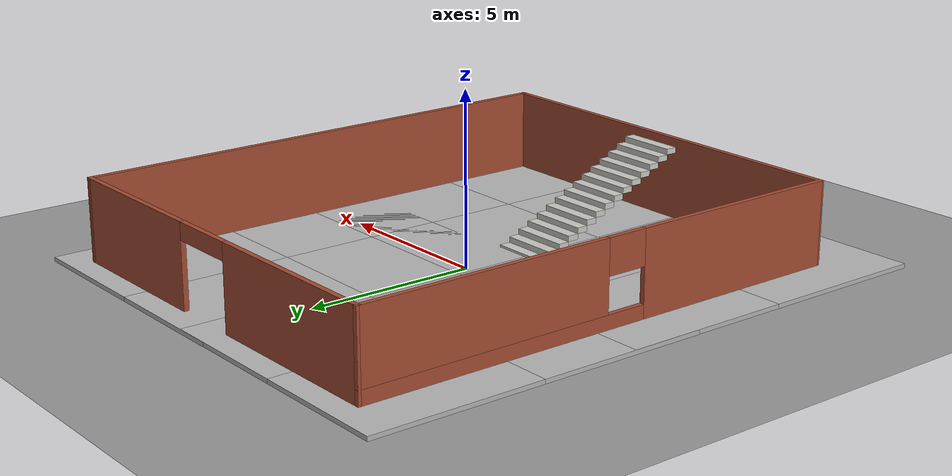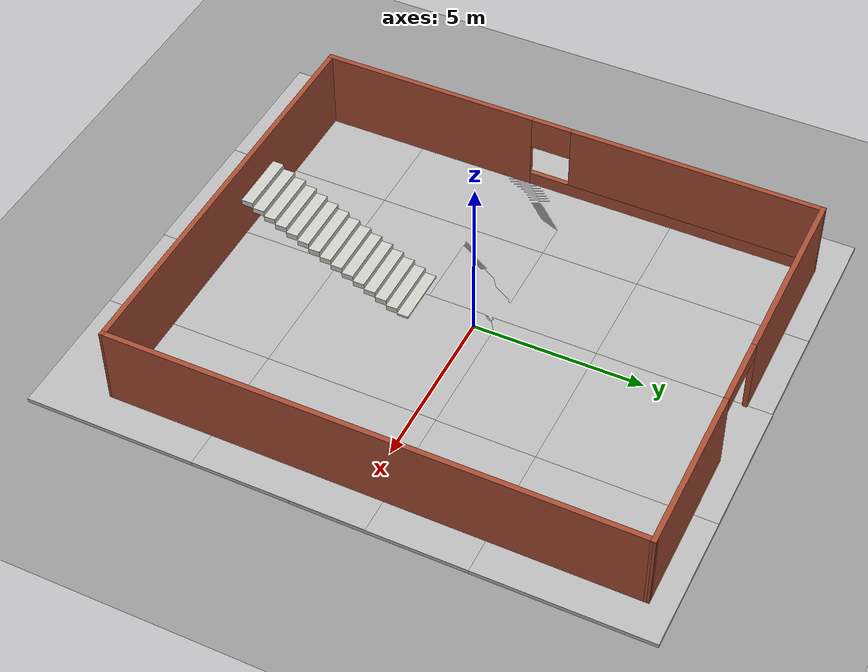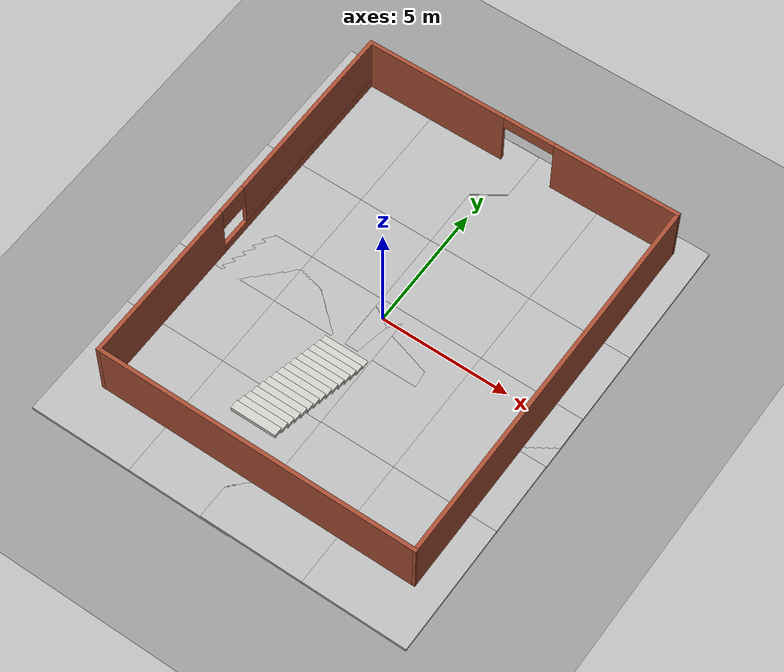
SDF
<sdf version="1.6">
 <world name="default">
  <light name="sun" type="directional">
   <pose>0 0 10 0 -0 0</pose>
   <diffuse>0.8 0.8 0.8 1</diffuse>
   <specular>0.2 0.2 0.2 1</specular>
   <attenuation>
    <range>1000</range>
    <constant>0.9</constant>
    <linear>0.01</linear>
    <quadratic>0.001</quadratic>
   </attenuation>
   <direction>0.5 0.1 -0.9</direction>
  </light>
  <scene><ambient>0.4 0.4 0.4 1</ambient><background>0.7 0.7 0.7 1</background><shadows>1</shadows></scene>
  <physics name="default_physics" default="0" type="ode">
   <max_step_size>0.01</max_step_size>
   <real_time_factor>1</real_time_factor>
   <real_time_update_rate>100</real_time_update_rate>
  </physics>
  <model name="ground_plane_0">
   <static>1</static>
   <link name="link">
    <collision name="collision">
     <geometry><plane><normal>0 0 1</normal><size>100 100</size></plane></geometry>
     <surface><friction><ode><mu>100</mu><mu2>50</mu2></ode></friction></surface>
    </collision>
    <visual name="visual">
     <cast_shadows>0</cast_shadows>
     <geometry><plane><normal>0 0 1</normal><size>100 100</size></plane></geometry>
     <material>
      <script><uri>file://media/materials/scripts/gazebo.material</uri><name>Gazebo/Grey</name></script>
     </material>
    </visual>
    <velocity_decay><linear>0</linear><angular>0</angular></velocity_decay>
   </link>
   <pose>0.497681 0 0 0 -0 0</pose>
  </model>
  <gravity>0 0 -9.8</gravity>
  <magnetic_field>6e-06 2.3e-05 -4.2e-05</magnetic_field>
  <atmosphere type="adiabatic"/>
  <spherical_coordinates>
   <surface_model>EARTH_WGS84</surface_model>
   <latitude_deg>0</latitude_deg>
   <longitude_deg>0</longitude_deg>
   <elevation>0</elevation>
   <heading_deg>0</heading_deg>
  </spherical_coordinates>
  <model name="botenv1">
   <pose>0.283531 0.148617 0 0 -0 0</pose>
   <link name="Stairs_2">
    <visual name="Stairs_2_Visual_0">
     <pose>-0.549734 -2.00833 0.083333 0 -0 0</pose>
     <geometry><box><size>1.75 0.334 0.166667</size></box></geometry>
     <material>
      <script><uri>file://media/materials/scripts/gazebo.material</uri><name>Gazebo/CeilingTiled</name></script>
      <ambient>0.760784 0.662745 0.627451 1</ambient>
     </material>
    </visual>
    <collision name="Stairs_2_Collision_0">
     <geometry><box><size>1.75 0.334 0.166667</size></box></geometry>
     <pose>-0.549734 -2.00833 0.083333 0 -0 0</pose>
    </collision>
    <visual name="Stairs_2_Visual_1">
     <pose>-0.549734 -2.34233 0.25 0 -0 0</pose>
     <geometry><box><size>1.75 0.334 0.166667</size></box></geometry>
     <material>
      <script><uri>file://media/materials/scripts/gazebo.material</uri><name>Gazebo/CeilingTiled</name></script>
      <ambient>0.760784 0.662745 0.627451 1</ambient>
     </material>
    </visual>
    <collision name="Stairs_2_Collision_1">
     <geometry><box><size>1.75 0.334 0.166667</size></box></geometry>
     <pose>-0.549734 -2.34233 0.25 0 -0 0</pose>
    </collision>
    <visual name="Stairs_2_Visual_2">
     <pose>-0.549734 -2.67633 0.416667 0 -0 0</pose>
     <geometry><box><size>1.75 0.334 0.166667</size></box></geometry>
     <material>
      <script><uri>file://media/materials/scripts/gazebo.material</uri><name>Gazebo/CeilingTiled</name></script>
      <ambient>0.760784 0.662745 0.627451 1</ambient>
     </material>
    </visual>
    <collision name="Stairs_2_Collision_2">
     <geometry><box><size>1.75 0.334 0.166667</size></box></geometry>
     <pose>-0.549734 -2.67633 0.416667 0 -0 0</pose>
    </collision>
    <visual name="Stairs_2_Visual_3">
     <pose>-0.549734 -3.01033 0.583333 0 -0 0</pose>
     <geometry><box><size>1.75 0.334 0.166667</size></box></geometry>
     <material>
      <script><uri>file://media/materials/scripts/gazebo.material</uri><name>Gazebo/CeilingTiled</name></script>
      <ambient>0.760784 0.662745 0.627451 1</ambient>
     </material>
    </visual>
    <collision name="Stairs_2_Collision_3">
     <geometry><box><size>1.75 0.334 0.166667</size></box></geometry>
     <pose>-0.549734 -3.01033 0.583333 0 -0 0</pose>
    </collision>
    <visual name="Stairs_2_Visual_4">
     <pose>-0.549734 -3.34433 0.75 0 -0 0</pose>
     <geometry><box><size>1.75 0.334 0.166667</size></box></geometry>
     <material>
      <script><uri>file://media/materials/scripts/gazebo.material</uri><name>Gazebo/CeilingTiled</name></script>
      <ambient>0.760784 0.662745 0.627451 1</ambient>
     </material>
    </visual>
    <collision name="Stairs_2_Collision_4">
     <geometry><box><size>1.75 0.334 0.166667</size></box></geometry>
     <pose>-0.549734 -3.34433 0.75 0 -0 0</pose>
    </collision>
    <visual name="Stairs_2_Visual_5">
     <pose>-0.549734 -3.67833 0.916667 0 -0 0</pose>
     <geometry><box><size>1.75 0.334 0.166667</size></box></geometry>
     <material>
      <script><uri>file://media/materials/scripts/gazebo.material</uri><name>Gazebo/CeilingTiled</name></script>
      <ambient>0.760784 0.662745 0.627451 1</ambient>
     </material>
    </visual>
    <collision name="Stairs_2_Collision_5">
     <geometry><box><size>1.75 0.334 0.166667</size></box></geometry>
     <pose>-0.549734 -3.67833 0.916667 0 -0 0</pose>
    </collision>
    <visual name="Stairs_2_Visual_6">
     <pose>-0.549734 -4.01233 1.08333 0 -0 0</pose>
     <geometry><box><size>1.75 0.334 0.166667</size></box></geometry>
     <material>
      <script><uri>file://media/materials/scripts/gazebo.material</uri><name>Gazebo/CeilingTiled</name></script>
      <ambient>0.760784 0.662745 0.627451 1</ambient>
     </material>
    </visual>
    <collision name="Stairs_2_Collision_6">
     <geometry><box><size>1.75 0.334 0.166667</size></box></geometry>
     <pose>-0.549734 -4.01233 1.08333 0 -0 0</pose>
    </collision>
    <visual name="Stairs_2_Visual_7">
     <pose>-0.549734 -4.34633 1.25 0 -0 0</pose>
     <geometry><box><size>1.75 0.334 0.166667</size></box></geometry>
     <material>
      <script><uri>file://media/materials/scripts/gazebo.material</uri><name>Gazebo/CeilingTiled</name></script>
      <ambient>0.760784 0.662745 0.627451 1</ambient>
     </material>
    </visual>
    <collision name="Stairs_2_Collision_7">
     <geometry><box><size>1.75 0.334 0.166667</size></box></geometry>
     <pose>-0.549734 -4.34633 1.25 0 -0 0</pose>
    </collision>
    <visual name="Stairs_2_Visual_8">
     <pose>-0.549734 -4.68033 1.41667 0 -0 0</pose>
     <geometry><box><size>1.75 0.334 0.166667</size></box></geometry>
     <material>
      <script><uri>file://media/materials/scripts/gazebo.material</uri><name>Gazebo/CeilingTiled</name></script>
      <ambient>0.760784 0.662745 0.627451 1</ambient>
     </material>
    </visual>
    <collision name="Stairs_2_Collision_8">
     <geometry><box><size>1.75 0.334 0.166667</size></box></geometry>
     <pose>-0.549734 -4.68033 1.41667 0 -0 0</pose>
    </collision>
    <visual name="Stairs_2_Visual_9">
     <pose>-0.549734 -5.01433 1.58333 0 -0 0</pose>
     <geometry><box><size>1.75 0.334 0.166667</size></box></geometry>
     <material>
      <script><uri>file://media/materials/scripts/gazebo.material</uri><name>Gazebo/CeilingTiled</name></script>
      <ambient>0.760784 0.662745 0.627451 1</ambient>
     </material>
    </visual>
    <collision name="Stairs_2_Collision_9">
     <geometry><box><size>1.75 0.334 0.166667</size></box></geometry>
     <pose>-0.549734 -5.01433 1.58333 0 -0 0</pose>
    </collision>
    <visual name="Stairs_2_Visual_10">
     <pose>-0.549734 -5.34833 1.75 0 -0 0</pose>
     <geometry><box><size>1.75 0.334 0.166667</size></box></geometry>
     <material>
      <script><uri>file://media/materials/scripts/gazebo.material</uri><name>Gazebo/CeilingTiled</name></script>
      <ambient>0.760784 0.662745 0.627451 1</ambient>
     </material>
    </visual>
    <collision name="Stairs_2_Collision_10">
     <geometry><box><size>1.75 0.334 0.166667</size></box></geometry>
     <pose>-0.549734 -5.34833 1.75 0 -0 0</pose>
    </collision>
    <visual name="Stairs_2_Visual_11">
     <pose>-0.549734 -5.68233 1.91667 0 -0 0</pose>
     <geometry><box><size>1.75 0.334 0.166667</size></box></geometry>
     <material>
      <script><uri>file://media/materials/scripts/gazebo.material</uri><name>Gazebo/CeilingTiled</name></script>
      <ambient>0.760784 0.662745 0.627451 1</ambient>
     </material>
    </visual>
    <collision name="Stairs_2_Collision_11">
     <geometry><box><size>1.75 0.334 0.166667</size></box></geometry>
     <pose>-0.549734 -5.68233 1.91667 0 -0 0</pose>
    </collision>
    <visual name="Stairs_2_Visual_12">
     <pose>-0.549734 -6.01633 2.08333 0 -0 0</pose>
     <geometry><box><size>1.75 0.334 0.166667</size></box></geometry>
     <material>
      <script><uri>file://media/materials/scripts/gazebo.material</uri><name>Gazebo/CeilingTiled</name></script>
      <ambient>0.760784 0.662745 0.627451 1</ambient>
     </material>
    </visual>
    <collision name="Stairs_2_Collision_12">
     <geometry><box><size>1.75 0.334 0.166667</size></box></geometry>
     <pose>-0.549734 -6.01633 2.08333 0 -0 0</pose>
    </collision>
    <visual name="Stairs_2_Visual_13">
     <pose>-0.549734 -6.35033 2.25 0 -0 0</pose>
     <geometry><box><size>1.75 0.334 0.166667</size></box></geometry>
     <material>
      <script><uri>file://media/materials/scripts/gazebo.material</uri><name>Gazebo/CeilingTiled</name></script>
      <ambient>0.760784 0.662745 0.627451 1</ambient>
     </material>
    </visual>
    <collision name="Stairs_2_Collision_13">
     <geometry><box><size>1.75 0.334 0.166667</size></box></geometry>
     <pose>-0.549734 -6.35033 2.25 0 -0 0</pose>
    </collision>
    <visual name="Stairs_2_Visual_14">
     <pose>-0.549734 -6.68433 2.41667 0 -0 0</pose>
     <geometry><box><size>1.75 0.334 0.166667</size></box></geometry>
     <material>
      <script><uri>file://media/materials/scripts/gazebo.material</uri><name>Gazebo/CeilingTiled</name></script>
      <ambient>0.760784 0.662745 0.627451 1</ambient>
     </material>
    </visual>
    <collision name="Stairs_2_Collision_14">
     <geometry><box><size>1.75 0.334 0.166667</size></box></geometry>
     <pose>-0.549734 -6.68433 2.41667 0 -0 0</pose>
    </collision>
   </link>
   <link name="Wall_11">
    <pose>0 7.53397 0 0 0 -3.13611</pose>
    <visual name="Wall_11_Visual_0">
     <pose>-3.80989 0 1.25 0 -0 0</pose>
     <geometry><box><size>4.9244 0.15 2.5</size></box></geometry>
     <material>
      <script><uri>file://media/materials/scripts/gazebo.material</uri><name>Gazebo/Bricks</name></script>
      <ambient>1 1 1 1</ambient>
     </material>
    </visual>
    <collision name="Wall_11_Collision_0">
     <geometry><box><size>4.9244 0.15 2.5</size></box></geometry>
     <pose>-3.80989 0 1.25 0 -0 0</pose>
    </collision>
    <visual name="Wall_11_Visual_1">
     <pose>3.47078 0 1.25 0 -0 0</pose>
     <geometry><box><size>5.60263 0.15 2.5</size></box></geometry>
     <material>
      <script><uri>file://media/materials/scripts/gazebo.material</uri><name>Gazebo/Bricks</name></script>
      <ambient>1 1 1 1</ambient>
     </material>
    </visual>
    <collision name="Wall_11_Collision_1">
     <geometry><box><size>5.60263 0.15 2.5</size></box></geometry>
     <pose>3.47078 0 1.25 0 -0 0</pose>
    </collision>
    <visual name="Wall_11_Visual_2">
     <pose>-0.339116 0 2.25 0 -0 0</pose>
     <geometry><box><size>2.01715 0.15 0.5</size></box></geometry>
     <material>
      <script><uri>file://media/materials/scripts/gazebo.material</uri><name>Gazebo/Bricks</name></script>
      <ambient>1 1 1 1</ambient>
     </material>
    </visual>
    <collision name="Wall_11_Collision_2">
     <geometry><box><size>2.01715 0.15 0.5</size></box></geometry>
     <pose>-0.339116 0 2.25 0 -0 0</pose>
    </collision>
   </link>
   <link name="Wall_15">
    <collision name="Wall_15_Collision">
     <geometry><box><size>15.2861 0.15 2.5</size></box></geometry>
     <pose>0 0 1.25 0 -0 0</pose>
    </collision>
    <visual name="Wall_15_Visual">
     <pose>0 0 1.25 0 -0 0</pose>
     <geometry><box><size>15.2861 0.15 2.5</size></box></geometry>
     <material>
      <script><uri>file://media/materials/scripts/gazebo.material</uri><name>Gazebo/Bricks</name></script>
      <ambient>1 1 1 1</ambient>
     </material>
    </visual>
    <pose>6.189 -3.1e-05 0 0 -0 1.56974</pose>
   </link>
   <link name="Wall_5">
    <collision name="Wall_5_Collision">
     <geometry><box><size>12.5 0.15 2.5</size></box></geometry>
     <pose>0 0 1.25 0 -0 0</pose>
    </collision>
    <visual name="Wall_5_Visual">
     <pose>0 0 1.25 0 -0 0</pose>
     <geometry><box><size>12.5 0.15 2.5</size></box></geometry>
     <material>
      <script><uri>file://media/materials/scripts/gazebo.material</uri><name>Gazebo/Bricks</name></script>
      <ambient>1 1 1 1</ambient>
     </material>
    </visual>
    <pose>0.006 -7.56803 0 0 -0 0</pose>
   </link>
   <link name="Wall_8">
    <pose>-6.183 -0.034031 0 0 -0 1.57265</pose>
    <visual name="Wall_8_Visual_0">
     <pose>-4.338 0 1.25 0 -0 0</pose>
     <geometry><box><size>6.54244 0.15 2.5</size></box></geometry>
     <material>
      <script><uri>file://media/materials/scripts/gazebo.material</uri><name>Gazebo/Bricks</name></script>
      <ambient>1 1 1 1</ambient>
     </material>
    </visual>
    <collision name="Wall_8_Collision_0">
     <geometry><box><size>6.54244 0.15 2.5</size></box></geometry>
     <pose>-4.338 0 1.25 0 -0 0</pose>
    </collision>
    <visual name="Wall_8_Visual_1">
     <pose>3.27122 0 0.25 0 -0 0</pose>
     <geometry><box><size>8.676 0.15 0.5</size></box></geometry>
     <material>
      <script><uri>file://media/materials/scripts/gazebo.material</uri><name>Gazebo/Bricks</name></script>
      <ambient>1 1 1 1</ambient>
     </material>
    </visual>
    <collision name="Wall_8_Collision_1">
     <geometry><box><size>8.676 0.15 0.5</size></box></geometry>
     <pose>3.27122 0 0.25 0 -0 0</pose>
    </collision>
    <visual name="Wall_8_Visual_2">
     <pose>3.86872 0 1.5 0 -0 0</pose>
     <geometry><box><size>7.481 0.15 2</size></box></geometry>
     <material>
      <script><uri>file://media/materials/scripts/gazebo.material</uri><name>Gazebo/Bricks</name></script>
      <ambient>1 1 1 1</ambient>
     </material>
    </visual>
    <collision name="Wall_8_Collision_2">
     <geometry><box><size>7.481 0.15 2</size></box></geometry>
     <pose>3.86872 0 1.5 0 -0 0</pose>
    </collision>
    <visual name="Wall_8_Visual_3">
     <pose>-0.469281 0 2 0 -0 0</pose>
     <geometry><box><size>1.195 0.15 1</size></box></geometry>
     <material>
      <script><uri>file://media/materials/scripts/gazebo.material</uri><name>Gazebo/Bricks</name></script>
      <ambient>1 1 1 1</ambient>
     </material>
    </visual>
    <collision name="Wall_8_Collision_3">
     <geometry><box><size>1.195 0.15 1</size></box></geometry>
     <pose>-0.469281 0 2 0 -0 0</pose>
    </collision>
   </link>
   <static>1</static>
  </model>
  <model name="mud_box_3">
   <static>1</static>
   <link name="link">
    <collision name="collision"><geometry><box><size>8 10 0.2</size></box></geometry></collision>
    <visual name="visual_1">
     <pose>-2 2.5 0 0 -0 0</pose>
     <cast_shadows>0</cast_shadows>
     <geometry><box><size>4 5 0.2</size></box></geometry>
     <material>
      <script>
       <uri>model://mud_box/materials/scripts</uri>
       <uri>model://mud_box/materials/textures</uri>
       <name>vrc/mud</name>
      </script>
     </material>
    </visual>
    <visual name="visual_2">
     <pose>2 2.5 0 0 -0 0</pose>
     <cast_shadows>0</cast_shadows>
     <geometry><box><size>4 5 0.2</size></box></geometry>
     <material>
      <script>
       <uri>model://mud_box/materials/scripts</uri>
       <uri>model://mud_box/materials/textures</uri>
       <name>vrc/mud</name>
      </script>
     </material>
    </visual>
    <visual name="visual_3">
     <pose>2 -2.5 0 0 -0 0</pose>
     <cast_shadows>0</cast_shadows>
     <geometry><box><size>4 5 0.2</size></box></geometry>
     <material>
      <script>
       <uri>model://mud_box/materials/scripts</uri>
       <uri>model://mud_box/materials/textures</uri>
       <name>vrc/mud</name>
      </script>
     </material>
    </visual>
    <visual name="visual_4">
     <pose>-2 -2.5 0 0 -0 0</pose>
     <cast_shadows>0</cast_shadows>
     <geometry><box><size>4 5 0.2</size></box></geometry>
     <material>
      <script>
       <uri>model://mud_box/materials/scripts</uri>
       <uri>model://mud_box/materials/textures</uri>
       <name>vrc/mud</name>
      </script>
     </material>
    </visual>
   </link>
   <pose>3.54536 -4.40262 0 0 -0 0</pose>
  </model>
  <model name="mud_box_4">
   <static>1</static>
   <link name="link">
    <collision name="collision"><geometry><box><size>8 10 0.2</size></box></geometry></collision>
    <visual name="visual_1">
     <pose>-2 2.5 0 0 -0 0</pose>
     <cast_shadows>0</cast_shadows>
     <geometry><box><size>4 5 0.2</size></box></geometry>
     <material>
      <script>
       <uri>model://mud_box/materials/scripts</uri>
       <uri>model://mud_box/materials/textures</uri>
       <name>vrc/mud</name>
      </script>
     </material>
    </visual>
    <visual name="visual_2">
     <pose>2 2.5 0 0 -0 0</pose>
     <cast_shadows>0</cast_shadows>
     <geometry><box><size>4 5 0.2</size></box></geometry>
     <material>
      <script>
       <uri>model://mud_box/materials/scripts</uri>
       <uri>model://mud_box/materials/textures</uri>
       <name>vrc/mud</name>
      </script>
     </material>
    </visual>
    <visual name="visual_3">
     <pose>2 -2.5 0 0 -0 0</pose>
     <cast_shadows>0</cast_shadows>
     <geometry><box><size>4 5 0.2</size></box></geometry>
     <material>
      <script>
       <uri>model://mud_box/materials/scripts</uri>
       <uri>model://mud_box/materials/textures</uri>
       <name>vrc/mud</name>
      </script>
     </material>
    </visual>
    <visual name="visual_4">
     <pose>-2 -2.5 0 0 -0 0</pose>
     <cast_shadows>0</cast_shadows>
     <geometry><box><size>4 5 0.2</size></box></geometry>
     <material>
      <script>
       <uri>model://mud_box/materials/scripts</uri>
       <uri>model://mud_box/materials/textures</uri>
       <name>vrc/mud</name>
      </script>
     </material>
    </visual>
   </link>
   <pose>-3.33563 -4.4235 0 0 -0 0</pose>
  </model>
  <model name="mud_box_8">
   <static>1</static>
   <link name="link">
    <collision name="collision"><geometry><box><size>8 10 0.2</size></box></geometry></collision>
    <visual name="visual_1">
     <pose>-2 2.5 0 0 -0 0</pose>
     <cast_shadows>0</cast_shadows>
     <geometry><box><size>4 5 0.2</size></box></geometry>
     <material>
      <script>
       <uri>model://mud_box/materials/scripts</uri>
       <uri>model://mud_box/materials/textures</uri>
       <name>vrc/mud</name>
      </script>
     </material>
    </visual>
    <visual name="visual_2">
     <pose>2 2.5 0 0 -0 0</pose>
     <cast_shadows>0</cast_shadows>
     <geometry><box><size>4 5 0.2</size></box></geometry>
     <material>
      <script>
       <uri>model://mud_box/materials/scripts</uri>
       <uri>model://mud_box/materials/textures</uri>
       <name>vrc/mud</name>
      </script>
     </material>
    </visual>
    <visual name="visual_3">
     <pose>2 -2.5 0 0 -0 0</pose>
     <cast_shadows>0</cast_shadows>
     <geometry><box><size>4 5 0.2</size></box></geometry>
     <material>
      <script>
       <uri>model://mud_box/materials/scripts</uri>
       <uri>model://mud_box/materials/textures</uri>
       <name>vrc/mud</name>
      </script>
     </material>
    </visual>
    <visual name="visual_4">
     <pose>-2 -2.5 0 0 -0 0</pose>
     <cast_shadows>0</cast_shadows>
     <geometry><box><size>4 5 0.2</size></box></geometry>
     <material>
      <script>
       <uri>model://mud_box/materials/scripts</uri>
       <uri>model://mud_box/materials/textures</uri>
       <name>vrc/mud</name>
      </script>
     </material>
    </visual>
   </link>
   <pose>3.55507 3.4482 0 0 -0 0</pose>
  </model>
  <model name="mud_box_9">
   <static>1</static>
   <link name="link">
    <collision name="collision"><geometry><box><size>8 10 0.2</size></box></geometry></collision>
    <visual name="visual_1">
     <pose>-2 2.5 0 0 -0 0</pose>
     <cast_shadows>0</cast_shadows>
     <geometry><box><size>4 5 0.2</size></box></geometry>
     <material>
      <script>
       <uri>model://mud_box/materials/scripts</uri>
       <uri>model://mud_box/materials/textures</uri>
       <name>vrc/mud</name>
      </script>
     </material>
    </visual>
    <visual name="visual_2">
     <pose>2 2.5 0 0 -0 0</pose>
     <cast_shadows>0</cast_shadows>
     <geometry><box><size>4 5 0.2</size></box></geometry>
     <material>
      <script>
       <uri>model://mud_box/materials/scripts</uri>
       <uri>model://mud_box/materials/textures</uri>
       <name>vrc/mud</name>
      </script>
     </material>
    </visual>
    <visual name="visual_3">
     <pose>2 -2.5 0 0 -0 0</pose>
     <cast_shadows>0</cast_shadows>
     <geometry><box><size>4 5 0.2</size></box></geometry>
     <material>
      <script>
       <uri>model://mud_box/materials/scripts</uri>
       <uri>model://mud_box/materials/textures</uri>
       <name>vrc/mud</name>
      </script>
     </material>
    </visual>
    <visual name="visual_4">
     <pose>-2 -2.5 0 0 -0 0</pose>
     <cast_shadows>0</cast_shadows>
     <geometry><box><size>4 5 0.2</size></box></geometry>
     <material>
      <script>
       <uri>model://mud_box/materials/scripts</uri>
       <uri>model://mud_box/materials/textures</uri>
       <name>vrc/mud</name>
      </script>
     </material>
    </visual>
   </link>
   <pose>-3.34382 3.43514 0 0 -0 0</pose>
  </model>
 </world>
</sdf>
